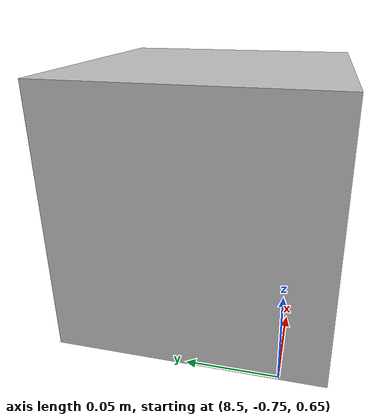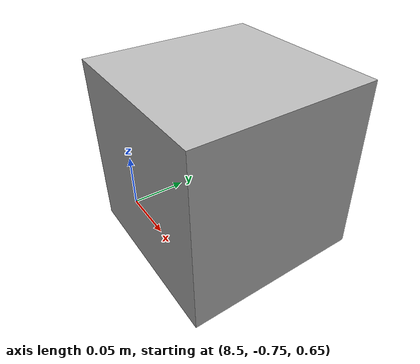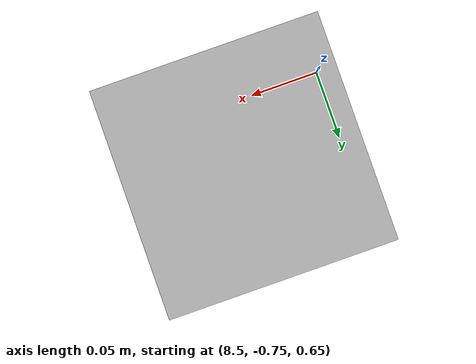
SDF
<sdf version="1.7">
 <world name="default">
  <model name="orthogonal_747_2.000.15_TS">
   <static>1</static>
   <link name="u_link_1_2_7">
    <inertial>
     <mass>1</mass>
     <inertia>
      <ixx>0.166667</ixx>
      <ixy>0</ixy>
      <ixz>0</ixz>
      <iyy>0.166667</iyy>
      <iyz>0</iyz>
      <izz>0.166667</izz>
     </inertia>
    </inertial>
    <pose>15.05 4.3 3.225 0 -0 0</pose>
    <visual name="visual_0">
     <laser_retro>1303</laser_retro>
     <geometry><box><size>0.15 1e-06 0.15</size></box></geometry>
     <material>
      <script><name>Gazebo/Grey</name><uri>file://media/materials/scripts/gazebo.material</uri></script>
      <shader type="pixel"><normal_map>__default__</normal_map></shader>
      <ambient>0.678 0.498 0.659 1</ambient>
      <diffuse>0.7 0.7 0.7 1</diffuse>
      <specular>0.01 0.01 0.01 1</specular>
      <emissive>0 0 0 1</emissive>
     </material>
     <pose>0 -0.075 0 0 -0 0</pose>
     <transparency>1</transparency>
    </visual>
    <visual name="visual_1">
     <laser_retro>1304</laser_retro>
     <geometry><box><size>0.15 1e-06 0.15</size></box></geometry>
     <material>
      <script><name>Gazebo/Grey</name><uri>file://media/materials/scripts/gazebo.material</uri></script>
      <shader type="pixel"><normal_map>__default__</normal_map></shader>
      <ambient>0.447 0.624 0.812 1</ambient>
      <diffuse>0.7 0.7 0.7 1</diffuse>
      <specular>0.01 0.01 0.01 1</specular>
      <emissive>0 0 0 1</emissive>
     </material>
     <pose>0 0.075 0 0 -0 0</pose>
     <transparency>1</transparency>
    </visual>
    <visual name="visual_2">
     <laser_retro>1305</laser_retro>
     <geometry><box><size>0.15 0.15 1e-06</size></box></geometry>
     <material>
      <script><name>Gazebo/Grey</name><uri>file://media/materials/scripts/gazebo.material</uri></script>
      <shader type="pixel"><normal_map>__default__</normal_map></shader>
      <ambient>0.988 0.686 0.243 1</ambient>
      <diffuse>0.7 0.7 0.7 1</diffuse>
      <specular>0.01 0.01 0.01 1</specular>
      <emissive>0 0 0 1</emissive>
     </material>
     <pose>0 0 -0.075 0 -0 0</pose>
     <transparency>1</transparency>
    </visual>
    <visual name="visual_3">
     <laser_retro>1306</laser_retro>
     <geometry><box><size>1e-06 0.15 0.15</size></box></geometry>
     <material>
      <script><name>Gazebo/Grey</name><uri>file://media/materials/scripts/gazebo.material</uri></script>
      <shader type="pixel"><normal_map>__default__</normal_map></shader>
      <ambient>0.988 0.914 0.31 1</ambient>
      <diffuse>0.7 0.7 0.7 1</diffuse>
      <specular>0.01 0.01 0.01 1</specular>
      <emissive>0 0 0 1</emissive>
     </material>
     <pose>0.075 0 0 0 -0 0</pose>
     <transparency>1</transparency>
    </visual>
    <visual name="visual_4">
     <laser_retro>1307</laser_retro>
     <geometry><box><size>0.15 0.15 1e-06</size></box></geometry>
     <material>
      <script><name>Gazebo/Grey</name><uri>file://media/materials/scripts/gazebo.material</uri></script>
      <shader type="pixel"><normal_map>__default__</normal_map></shader>
      <ambient>0.937 0.161 0.161 1</ambient>
      <diffuse>0.7 0.7 0.7 1</diffuse>
      <specular>0.01 0.01 0.01 1</specular>
      <emissive>0 0 0 1</emissive>
     </material>
     <pose>0 0 0.075 0 -0 0</pose>
     <transparency>1</transparency>
    </visual>
    <visual name="visual_5">
     <laser_retro>1308</laser_retro>
     <geometry><box><size>1e-06 0.15 0.15</size></box></geometry>
     <material>
      <script><name>Gazebo/Grey</name><uri>file://media/materials/scripts/gazebo.material</uri></script>
      <shader type="pixel"><normal_map>__default__</normal_map></shader>
      <ambient>0.541 0.886 0.204 1</ambient>
      <diffuse>0.7 0.7 0.7 1</diffuse>
      <specular>0.01 0.01 0.01 1</specular>
      <emissive>0 0 0 1</emissive>
     </material>
     <pose>-0.075 0 0 0 -0 0</pose>
     <transparency>1</transparency>
    </visual>
    <visual name="visual_texture">
     <geometry><box><size>0.149985 0.149985 0.149985</size></box></geometry>
     <material>
      <script>
       <uri>model://BASE_MODELS/simple_block_v2_textured/materials/scripts</uri>
       <uri>model://BASE_MODELS/simple_block_v2_textured/materials/textures</uri>
       <name>metal</name>
      </script>
     </material>
     <laser_retro>1309</laser_retro>
    </visual>
    <collision name="collision">
     <geometry><box><size>0.15 0.15 0.15</size></box></geometry>
     <surface>
      <friction>
       <ode><mu>1</mu><mu2>1</mu2><fdir1>0 0 0</fdir1><slip1>0</slip1><slip2>0</slip2></ode>
       <torsional>
        <coefficient>1</coefficient>
        <patch_radius>0</patch_radius>
        <surface_radius>0</surface_radius>
        <use_patch_radius>1</use_patch_radius>
        <ode><slip>0</slip></ode>
       </torsional>
      </friction>
      <bounce><restitution_coefficient>0</restitution_coefficient><threshold>1e+06</threshold></bounce>
      <contact>
       <collide_without_contact>0</collide_without_contact>
       <collide_without_contact_bitmask>1</collide_without_contact_bitmask>
       <collide_bitmask>1</collide_bitmask>
       <ode>
        <soft_cfm>0</soft_cfm>
        <soft_erp>0.2</soft_erp>
        <kp>1e+13</kp>
        <kd>1</kd>
        <max_vel>0.01</max_vel>
        <min_depth>0</min_depth>
       </ode>
       <bullet>
        <split_impulse>1</split_impulse>
        <split_impulse_penetration_threshold>-0.01</split_impulse_penetration_threshold>
        <soft_cfm>0</soft_cfm>
        <soft_erp>0.2</soft_erp>
        <kp>1e+13</kp>
        <kd>1</kd>
       </bullet>
      </contact>
     </surface>
    </collision>
   </link>
   <pose>-6.47624 -5 -2.5 0 -0 0</pose>
  </model>
 </world>
</sdf>
